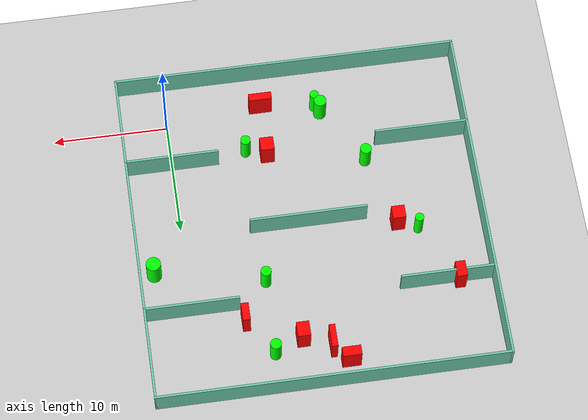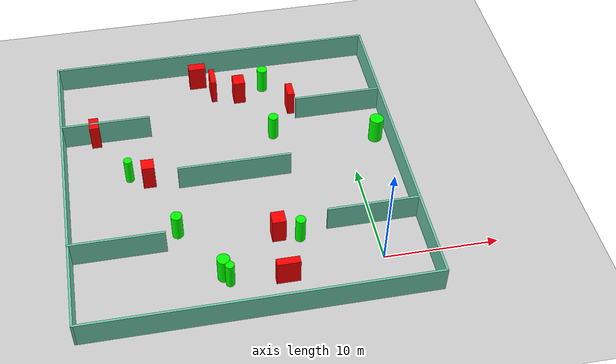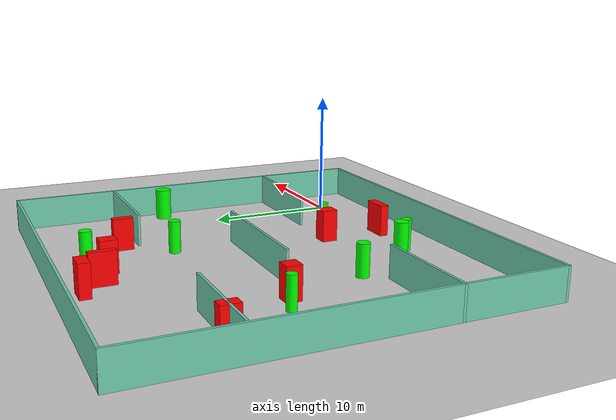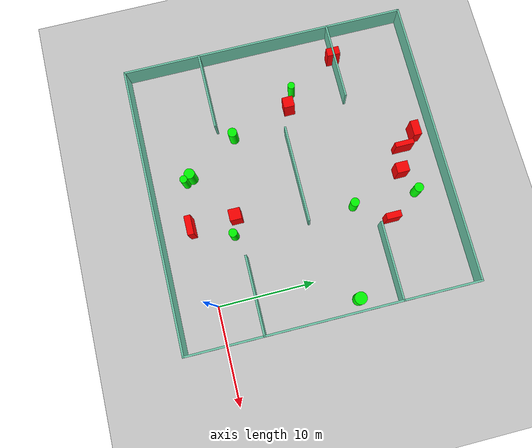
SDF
<sdf version="1.7">
 <world name="default">
  <light name="sun" type="directional">
   <pose>0 0 10 0 -0 0</pose>
   <diffuse>0.8 0.8 0.8 1</diffuse>
   <specular>0.2 0.2 0.2 1</specular>
   <attenuation>
    <range>1000</range>
    <constant>0.9</constant>
    <linear>0.01</linear>
    <quadratic>0.001</quadratic>
   </attenuation>
   <direction>-0.5 0.1 -0.9</direction>
   <spot><inner_angle>0</inner_angle><outer_angle>0</outer_angle><falloff>0</falloff></spot>
  </light>
  <model name="ground_plane">
   <static>1</static>
   <link name="link">
    <collision name="collision">
     <geometry><plane><normal>0 0 1</normal><size>100 100</size></plane></geometry>
     <surface>
      <contact><collide_bitmask>65535</collide_bitmask></contact>
      <friction><ode><mu>100</mu><mu2>50</mu2></ode></friction>
     </surface>
    </collision>
    <visual name="visual">
     <cast_shadows>0</cast_shadows>
     <geometry><plane><normal>0 0 1</normal><size>100 100</size></plane></geometry>
     <material>
      <script><uri>file://media/materials/scripts/gazebo.material</uri><name>Gazebo/Grey</name></script>
     </material>
    </visual>
   </link>
  </model>
  <gravity>0 0 -9.8</gravity>
  <magnetic_field>6e-06 2.3e-05 -4.2e-05</magnetic_field>
  <atmosphere type="adiabatic"/>
  <physics type="ode">
   <max_step_size>0.001</max_step_size>
   <real_time_factor>1</real_time_factor>
   <real_time_update_rate>1000</real_time_update_rate>
  </physics>
  <scene><ambient>0.4 0.4 0.4 1</ambient><background>0.7 0.7 0.7 1</background><shadows>1</shadows></scene>
  <spherical_coordinates>
   <surface_model>EARTH_WGS84</surface_model>
   <latitude_deg>0</latitude_deg>
   <longitude_deg>0</longitude_deg>
   <elevation>0</elevation>
   <heading_deg>0</heading_deg>
  </spherical_coordinates>
  <model name="my_base_walls">
   <link name="Wall_10">
    <collision name="Wall_10_Collision">
     <geometry><box><size>8.2 0.2 2.5</size></box></geometry>
     <pose>0 0 1.25 0 -0 0</pose>
    </collision>
    <visual name="Wall_10_Visual">
     <pose>0 0 1.25 0 -0 0</pose>
     <geometry><box><size>8.2 0.2 2.5</size></box></geometry>
     <material>
      <script><uri>file://media/materials/scripts/gazebo.material</uri><name>Gazebo/Grey</name></script>
      <ambient>0.435294 0.796078 0.67451 1</ambient>
     </material>
     <meta><layer>0</layer></meta>
    </visual>
    <pose>-11 -7 0 0 -0 0</pose>
   </link>
   <link name="Wall_12">
    <collision name="Wall_12_Collision">
     <geometry><box><size>8.2 0.2 2.5</size></box></geometry>
     <pose>0 0 1.25 0 -0 0</pose>
    </collision>
    <visual name="Wall_12_Visual">
     <pose>0 0 1.25 0 -0 0</pose>
     <geometry><box><size>8.2 0.2 2.5</size></box></geometry>
     <material>
      <script><uri>file://media/materials/scripts/gazebo.material</uri><name>Gazebo/Grey</name></script>
      <ambient>0.435294 0.796078 0.67451 1</ambient>
     </material>
     <meta><layer>0</layer></meta>
    </visual>
    <pose>-11 7 0 0 -0 0</pose>
   </link>
   <link name="Wall_14">
    <collision name="Wall_14_Collision">
     <geometry><box><size>8.2 0.2 2.5</size></box></geometry>
     <pose>0 0 1.25 0 -0 0</pose>
    </collision>
    <visual name="Wall_14_Visual">
     <pose>0 0 1.25 0 -0 0</pose>
     <geometry><box><size>8.2 0.2 2.5</size></box></geometry>
     <material>
      <script><uri>file://media/materials/scripts/gazebo.material</uri><name>Gazebo/Grey</name></script>
      <ambient>0.435294 0.796078 0.67451 1</ambient>
     </material>
     <meta><layer>0</layer></meta>
    </visual>
    <pose>11 7 0 0 -0 3.14159</pose>
   </link>
   <link name="Wall_16">
    <collision name="Wall_16_Collision">
     <geometry><box><size>10.2 0.2 2.5</size></box></geometry>
     <pose>0 0 1.25 0 -0 0</pose>
    </collision>
    <visual name="Wall_16_Visual">
     <pose>0 0 1.25 0 -0 0</pose>
     <geometry><box><size>10.2 0.2 2.5</size></box></geometry>
     <material>
      <script><uri>file://media/materials/scripts/gazebo.material</uri><name>Gazebo/Grey</name></script>
      <ambient>0.435294 0.796078 0.67451 1</ambient>
     </material>
     <meta><layer>0</layer></meta>
    </visual>
    <pose>0 0 0 0 -0 3.14159</pose>
   </link>
   <link name="Wall_2">
    <collision name="Wall_2_Collision">
     <geometry><box><size>30.2 0.2 2.5</size></box></geometry>
     <pose>0 0 1.25 0 -0 0</pose>
    </collision>
    <visual name="Wall_2_Visual">
     <pose>0 0 1.25 0 -0 0</pose>
     <geometry><box><size>30.2 0.2 2.5</size></box></geometry>
     <material>
      <script><uri>file://media/materials/scripts/gazebo.material</uri><name>Gazebo/Grey</name></script>
      <ambient>0.435294 0.796078 0.67451 1</ambient>
     </material>
     <meta><layer>0</layer></meta>
    </visual>
    <pose>0 -15 0 0 -0 3.14159</pose>
   </link>
   <link name="Wall_3">
    <collision name="Wall_3_Collision">
     <geometry><box><size>30.2 0.2 2.5</size></box></geometry>
     <pose>0 0 1.25 0 -0 0</pose>
    </collision>
    <visual name="Wall_3_Visual">
     <pose>0 0 1.25 0 -0 0</pose>
     <geometry><box><size>30.2 0.2 2.5</size></box></geometry>
     <material>
      <script><uri>file://media/materials/scripts/gazebo.material</uri><name>Gazebo/Grey</name></script>
      <ambient>0.435294 0.796078 0.67451 1</ambient>
     </material>
     <meta><layer>0</layer></meta>
    </visual>
    <pose>-15 0 0 0 -0 1.5708</pose>
   </link>
   <link name="Wall_4">
    <collision name="Wall_4_Collision">
     <geometry><box><size>30.2 0.2 2.5</size></box></geometry>
     <pose>0 0 1.25 0 -0 0</pose>
    </collision>
    <visual name="Wall_4_Visual">
     <pose>0 0 1.25 0 -0 0</pose>
     <geometry><box><size>30.2 0.2 2.5</size></box></geometry>
     <material>
      <script><uri>file://media/materials/scripts/gazebo.material</uri><name>Gazebo/Grey</name></script>
      <ambient>0.435294 0.796078 0.67451 1</ambient>
     </material>
     <meta><layer>0</layer></meta>
    </visual>
    <pose>0 15 0 0 -0 0</pose>
   </link>
   <link name="Wall_6">
    <collision name="Wall_6_Collision">
     <geometry><box><size>30.2 0.2 2.5</size></box></geometry>
     <pose>0 0 1.25 0 -0 0</pose>
    </collision>
    <visual name="Wall_6_Visual">
     <pose>0 0 1.25 0 -0 0</pose>
     <geometry><box><size>30.2 0.2 2.5</size></box></geometry>
     <material>
      <script><uri>file://media/materials/scripts/gazebo.material</uri><name>Gazebo/Grey</name></script>
      <ambient>0.435294 0.796078 0.67451 1</ambient>
     </material>
     <meta><layer>0</layer></meta>
    </visual>
    <pose>15 0 0 0 -0 1.5708</pose>
   </link>
   <link name="Wall_8">
    <collision name="Wall_8_Collision">
     <geometry><box><size>8.2 0.2 2.5</size></box></geometry>
     <pose>0 0 1.25 0 -0 0</pose>
    </collision>
    <visual name="Wall_8_Visual">
     <pose>0 0 1.25 0 -0 0</pose>
     <geometry><box><size>8.2 0.2 2.5</size></box></geometry>
     <material>
      <script><uri>file://media/materials/scripts/gazebo.material</uri><name>Gazebo/Grey</name></script>
      <ambient>0.435294 0.796078 0.67451 1</ambient>
     </material>
     <meta><layer>0</layer></meta>
    </visual>
    <pose>11 -7 0 0 -0 3.14159</pose>
   </link>
   <static>1</static>
   <pose>-11 11 0 0 -0 0</pose>
  </model>
  <model name="cylinder1">
   <static>1</static>
   <link name="link">
    <inertial>
     <mass>1</mass>
     <inertia><ixx>0.5</ixx><ixy>0</ixy><ixz>0</ixz><iyy>0.5</iyy><iyz>0</iyz><izz>1</izz></inertia>
    </inertial>
    <collision name="collision">
     <geometry><cylinder><radius>0.45677619110511025</radius><length>2.5</length></cylinder></geometry>
    </collision>
    <visual name="visual">
     <geometry><cylinder><radius>0.45677619110511025</radius><length>2.5</length></cylinder></geometry>
     <material>
      <ambient>0 1 0 1</ambient>
      <diffuse>0 1 0 1</diffuse>
      <specular>0.1 0.1 0.1 1</specular>
      <emissive>0 0 0 0</emissive>
     </material>
    </visual>
   </link>
   <pose>-6.620872451091472 15.93884248960262 1.25 0 0 0</pose>
  </model>
  <model name="cylinder2">
   <static>1</static>
   <link name="link">
    <inertial>
     <mass>1</mass>
     <inertia><ixx>0.5</ixx><ixy>0</ixy><ixz>0</ixz><iyy>0.5</iyy><iyz>0</iyz><izz>1</izz></inertia>
    </inertial>
    <collision name="collision">
     <geometry><cylinder><radius>0.6326885521016608</radius><length>2.5</length></cylinder></geometry>
    </collision>
    <visual name="visual">
     <geometry><cylinder><radius>0.6326885521016608</radius><length>2.5</length></cylinder></geometry>
     <material>
      <ambient>0 1 0 1</ambient>
      <diffuse>0 1 0 1</diffuse>
      <specular>0.1 0.1 0.1 1</specular>
      <emissive>0 0 0 0</emissive>
     </material>
    </visual>
   </link>
   <pose>2.7587313986575097 13.977392290731025 1.25 0 0 0</pose>
  </model>
  <model name="cylinder3">
   <static>1</static>
   <link name="link">
    <inertial>
     <mass>1</mass>
     <inertia><ixx>0.5</ixx><ixy>0</ixy><ixz>0</ixz><iyy>0.5</iyy><iyz>0</iyz><izz>1</izz></inertia>
    </inertial>
    <collision name="collision">
     <geometry><cylinder><radius>0.4876300333069293</radius><length>2.5</length></cylinder></geometry>
    </collision>
    <visual name="visual">
     <geometry><cylinder><radius>0.4876300333069293</radius><length>2.5</length></cylinder></geometry>
     <material>
      <ambient>0 1 0 1</ambient>
      <diffuse>0 1 0 1</diffuse>
      <specular>0.1 0.1 0.1 1</specular>
      <emissive>0 0 0 0</emissive>
     </material>
    </visual>
   </link>
   <pose>-16.830835386803415 5.568447242351949 1.25 0 0 0</pose>
  </model>
  <model name="cylinder4">
   <static>1</static>
   <link name="link">
    <inertial>
     <mass>1</mass>
     <inertia><ixx>0.5</ixx><ixy>0</ixy><ixz>0</ixz><iyy>0.5</iyy><iyz>0</iyz><izz>1</izz></inertia>
    </inertial>
    <collision name="collision">
     <geometry><cylinder><radius>0.4801234234044858</radius><length>2.5</length></cylinder></geometry>
    </collision>
    <visual name="visual">
     <geometry><cylinder><radius>0.4801234234044858</radius><length>2.5</length></cylinder></geometry>
     <material>
      <ambient>0 1 0 1</ambient>
      <diffuse>0 1 0 1</diffuse>
      <specular>0.1 0.1 0.1 1</specular>
      <emissive>0 0 0 0</emissive>
     </material>
    </visual>
   </link>
   <pose>-6.529674738343209 22.631075190562537 1.25 0 0 0</pose>
  </model>
  <model name="cylinder5">
   <static>1</static>
   <link name="link">
    <inertial>
     <mass>1</mass>
     <inertia><ixx>0.5</ixx><ixy>0</ixy><ixz>0</ixz><iyy>0.5</iyy><iyz>0</iyz><izz>1</izz></inertia>
    </inertial>
    <collision name="collision">
     <geometry><cylinder><radius>0.43664738794695457</radius><length>2.5</length></cylinder></geometry>
    </collision>
    <visual name="visual">
     <geometry><cylinder><radius>0.43664738794695457</radius><length>2.5</length></cylinder></geometry>
     <material>
      <ambient>0 1 0 1</ambient>
      <diffuse>0 1 0 1</diffuse>
      <specular>0.1 0.1 0.1 1</specular>
      <emissive>0 0 0 0</emissive>
     </material>
    </visual>
   </link>
   <pose>-6.573482584119281 3.304853748445977 1.25 0 0 0</pose>
  </model>
  <model name="cylinder6">
   <static>1</static>
   <link name="link">
    <inertial>
     <mass>1</mass>
     <inertia><ixx>0.5</ixx><ixy>0</ixy><ixz>0</ixz><iyy>0.5</iyy><iyz>0</iyz><izz>1</izz></inertia>
    </inertial>
    <collision name="collision">
     <geometry><cylinder><radius>0.3887088169675073</radius><length>2.5</length></cylinder></geometry>
    </collision>
    <visual name="visual">
     <geometry><cylinder><radius>0.3887088169675073</radius><length>2.5</length></cylinder></geometry>
     <material>
      <ambient>0 1 0 1</ambient>
      <diffuse>0 1 0 1</diffuse>
      <specular>0.1 0.1 0.1 1</specular>
      <emissive>0 0 0 0</emissive>
     </material>
    </visual>
   </link>
   <pose>-13.166836941031708 -0.3511765514335816 1.25 0 0 0</pose>
  </model>
  <model name="cylinder7">
   <static>1</static>
   <link name="link">
    <inertial>
     <mass>1</mass>
     <inertia><ixx>0.5</ixx><ixy>0</ixy><ixz>0</ixz><iyy>0.5</iyy><iyz>0</iyz><izz>1</izz></inertia>
    </inertial>
    <collision name="collision">
     <geometry><cylinder><radius>0.3759045606093738</radius><length>2.5</length></cylinder></geometry>
    </collision>
    <visual name="visual">
     <geometry><cylinder><radius>0.3759045606093738</radius><length>2.5</length></cylinder></geometry>
     <material>
      <ambient>0 1 0 1</ambient>
      <diffuse>0 1 0 1</diffuse>
      <specular>0.1 0.1 0.1 1</specular>
      <emissive>0 0 0 0</emissive>
     </material>
    </visual>
   </link>
   <pose>-20.354329332230964 12.73010599642437 1.25 0 0 0</pose>
  </model>
  <model name="cylinder8">
   <static>1</static>
   <link name="link">
    <inertial>
     <mass>1</mass>
     <inertia><ixx>0.5</ixx><ixy>0</ixy><ixz>0</ixz><iyy>0.5</iyy><iyz>0</iyz><izz>1</izz></inertia>
    </inertial>
    <collision name="collision">
     <geometry><cylinder><radius>0.5480515179329473</radius><length>2.5</length></cylinder></geometry>
    </collision>
    <visual name="visual">
     <geometry><cylinder><radius>0.5480515179329473</radius><length>2.5</length></cylinder></geometry>
     <material>
      <ambient>0 1 0 1</ambient>
      <diffuse>0 1 0 1</diffuse>
      <specular>0.1 0.1 0.1 1</specular>
      <emissive>0 0 0 0</emissive>
     </material>
    </visual>
   </link>
   <pose>-13.593258536447085 0.3407132108491262 1.25 0 0 0</pose>
  </model>
  <model name="box1">
   <static>1</static>
   <link name="link">
    <inertial>
     <mass>1</mass>
     <inertia><ixx>0.083</ixx><ixy>0</ixy><ixz>0</ixz><iyy>0.083</iyy><iyz>0</iyz><izz>0.083</izz></inertia>
    </inertial>
    <collision name="collision">
     <geometry><box><size>1.1888762383838296 1.2174876473403837 2.5</size></box></geometry>
    </collision>
    <visual name="visual">
     <geometry><box><size>1.1888762383838296 1.2174876473403837 2.5</size></box></geometry>
     <material>
      <ambient>1 0 0 1</ambient>
      <diffuse>1 0 0 1</diffuse>
      <specular>0.1 0.1 0.1 1</specular>
      <emissive>0 0 0 0</emissive>
     </material>
    </visual>
    <sensor name="my_contact" type="contact">
     <contact><collision>box_collision</collision><topic>__default_topic__</topic></contact>
    </sensor>
   </link>
   <pose>-8.38352515815845 3.8960999866197135 1.25 0 0 0</pose>
  </model>
  <model name="box2">
   <static>1</static>
   <link name="link">
    <inertial>
     <mass>1</mass>
     <inertia><ixx>0.083</ixx><ixy>0</ixy><ixz>0</ixz><iyy>0.083</iyy><iyz>0</iyz><izz>0.083</izz></inertia>
    </inertial>
    <collision name="collision">
     <geometry><box><size>2.0129528883651844 0.6607225088120596 2.5</size></box></geometry>
    </collision>
    <visual name="visual">
     <geometry><box><size>2.0129528883651844 0.6607225088120596 2.5</size></box></geometry>
     <material>
      <ambient>1 0 0 1</ambient>
      <diffuse>1 0 0 1</diffuse>
      <specular>0.1 0.1 0.1 1</specular>
      <emissive>0 0 0 0</emissive>
     </material>
    </visual>
    <sensor name="my_contact" type="contact">
     <contact><collision>box_collision</collision><topic>__default_topic__</topic></contact>
    </sensor>
   </link>
   <pose>-8.417730823489165 -0.8037309933896042 1.25 0 0 0</pose>
  </model>
  <model name="box3">
   <static>1</static>
   <link name="link">
    <inertial>
     <mass>1</mass>
     <inertia><ixx>0.083</ixx><ixy>0</ixy><ixz>0</ixz><iyy>0.083</iyy><iyz>0</iyz><izz>0.083</izz></inertia>
    </inertial>
    <collision name="collision">
     <geometry><box><size>1.0940364075095705 1.2922143723295352 2.5</size></box></geometry>
    </collision>
    <visual name="visual">
     <geometry><box><size>1.0940364075095705 1.2922143723295352 2.5</size></box></geometry>
     <material>
      <ambient>1 0 0 1</ambient>
      <diffuse>1 0 0 1</diffuse>
      <specular>0.1 0.1 0.1 1</specular>
      <emissive>0 0 0 0</emissive>
     </material>
    </visual>
    <sensor name="my_contact" type="contact">
     <contact><collision>box_collision</collision><topic>__default_topic__</topic></contact>
    </sensor>
   </link>
   <pose>-9.000531302905245 21.60315427000721 1.25 0 0 0</pose>
  </model>
  <model name="box4">
   <static>1</static>
   <link name="link">
    <inertial>
     <mass>1</mass>
     <inertia><ixx>0.083</ixx><ixy>0</ixy><ixz>0</ixz><iyy>0.083</iyy><iyz>0</iyz><izz>0.083</izz></inertia>
    </inertial>
    <collision name="collision">
     <geometry><box><size>0.8662351265229071 1.38121110438198 2.5</size></box></geometry>
    </collision>
    <visual name="visual">
     <geometry><box><size>0.8662351265229071 1.38121110438198 2.5</size></box></geometry>
     <material>
      <ambient>1 0 0 1</ambient>
      <diffuse>1 0 0 1</diffuse>
      <specular>0.1 0.1 0.1 1</specular>
      <emissive>0 0 0 0</emissive>
     </material>
    </visual>
    <sensor name="my_contact" type="contact">
     <contact><collision>box_collision</collision><topic>__default_topic__</topic></contact>
    </sensor>
   </link>
   <pose>-23.05396174545065 17.980667757089158 1.25 0 0 0</pose>
  </model>
  <model name="box5">
   <static>1</static>
   <link name="link">
    <inertial>
     <mass>1</mass>
     <inertia><ixx>0.083</ixx><ixy>0</ixy><ixz>0</ixz><iyy>0.083</iyy><iyz>0</iyz><izz>0.083</izz></inertia>
    </inertial>
    <collision name="collision">
     <geometry><box><size>0.6504006718144788 1.56407952961205 2.5</size></box></geometry>
    </collision>
    <visual name="visual">
     <geometry><box><size>0.6504006718144788 1.56407952961205 2.5</size></box></geometry>
     <material>
      <ambient>1 0 0 1</ambient>
      <diffuse>1 0 0 1</diffuse>
      <specular>0.1 0.1 0.1 1</specular>
      <emissive>0 0 0 0</emissive>
     </material>
    </visual>
    <sensor name="my_contact" type="contact">
     <contact><collision>box_collision</collision><topic>__default_topic__</topic></contact>
    </sensor>
   </link>
   <pose>-4.411625194389051 19.384618476686544 1.25 0 0 0</pose>
  </model>
  <model name="box6">
   <static>1</static>
   <link name="link">
    <inertial>
     <mass>1</mass>
     <inertia><ixx>0.083</ixx><ixy>0</ixy><ixz>0</ixz><iyy>0.083</iyy><iyz>0</iyz><izz>0.083</izz></inertia>
    </inertial>
    <collision name="collision">
     <geometry><box><size>0.5142173967541653 1.981161854499366 2.5</size></box></geometry>
    </collision>
    <visual name="visual">
     <geometry><box><size>0.5142173967541653 1.981161854499366 2.5</size></box></geometry>
     <material>
      <ambient>1 0 0 1</ambient>
      <diffuse>1 0 0 1</diffuse>
      <specular>0.1 0.1 0.1 1</specular>
      <emissive>0 0 0 0</emissive>
     </material>
    </visual>
    <sensor name="my_contact" type="contact">
     <contact><collision>box_collision</collision><topic>__default_topic__</topic></contact>
    </sensor>
   </link>
   <pose>-11.400096860058884 22.532808950083876 1.25 0 0 0</pose>
  </model>
  <model name="box7">
   <static>1</static>
   <link name="link">
    <inertial>
     <mass>1</mass>
     <inertia><ixx>0.083</ixx><ixy>0</ixy><ixz>0</ixz><iyy>0.083</iyy><iyz>0</iyz><izz>0.083</izz></inertia>
    </inertial>
    <collision name="collision">
     <geometry><box><size>1.1364139124016868 1.1455181906202276 2.5</size></box></geometry>
    </collision>
    <visual name="visual">
     <geometry><box><size>1.1364139124016868 1.1455181906202276 2.5</size></box></geometry>
     <material>
      <ambient>1 0 0 1</ambient>
      <diffuse>1 0 0 1</diffuse>
      <specular>0.1 0.1 0.1 1</specular>
      <emissive>0 0 0 0</emissive>
     </material>
    </visual>
    <sensor name="my_contact" type="contact">
     <contact><collision>box_collision</collision><topic>__default_topic__</topic></contact>
    </sensor>
   </link>
   <pose>-18.663521764440567 11.981756182432667 1.25 0 0 0</pose>
  </model>
  <model name="box8">
   <static>1</static>
   <link name="link">
    <inertial>
     <mass>1</mass>
     <inertia><ixx>0.083</ixx><ixy>0</ixy><ixz>0</ixz><iyy>0.083</iyy><iyz>0</iyz><izz>0.083</izz></inertia>
    </inertial>
    <collision name="collision">
     <geometry><box><size>1.599232344566508 0.8410912252775053 2.5</size></box></geometry>
    </collision>
    <visual name="visual">
     <geometry><box><size>1.599232344566508 0.8410912252775053 2.5</size></box></geometry>
     <material>
      <ambient>1 0 0 1</ambient>
      <diffuse>1 0 0 1</diffuse>
      <specular>0.1 0.1 0.1 1</specular>
      <emissive>0 0 0 0</emissive>
     </material>
    </visual>
    <sensor name="my_contact" type="contact">
     <contact><collision>box_collision</collision><topic>__default_topic__</topic></contact>
    </sensor>
   </link>
   <pose>-12.71978501561765 24.135514304658525 1.25 0 0 0</pose>
  </model>
 </world>
</sdf>
